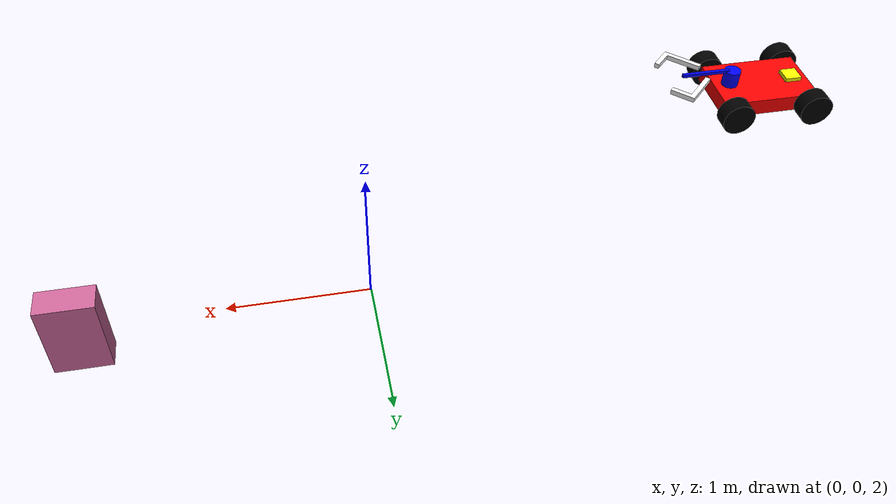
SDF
<sdf version="1.8">
 <world name="demo">
  <physics name="1ms" type="ignored">
   <max_step_size>0.01</max_step_size>
   <real_time_factor>1</real_time_factor>
  </physics>
  <plugin name="ignition::gazebo::systems::Physics" filename="libignition-gazebo-physics-system.so"/>
  <plugin name="ignition::gazebo::systems::UserCommands" filename="libignition-gazebo-user-commands-system.so"/>
  <plugin name="ignition::gazebo::systems::SceneBroadcaster" filename="libignition-gazebo-scene-broadcaster-system.so"/>
  <plugin name="ignition::gazebo::systems::Imu" filename="ignition-gazebo-imu-system"/>
  <plugin name="ignition::gazebo::systems::Sensors" filename="ignition-gazebo-sensors-system">
   <render_engine>ogre2</render_engine>
  </plugin>
  <scene>
   <ambient>1 1 1 1</ambient>
   <background>0.3 0.7 0.9 1</background>
   <shadows>0</shadows>
   <grid>1</grid>
  </scene>
  <model name="ground_plane">
   <static>1</static>
   <link name="link">
    <collision name="collision">
     <geometry><plane><normal>0 0 1</normal><size>1 1</size></plane></geometry>
    </collision>
   </link>
  </model>
  <model name="depot_collision">
   <static>1</static>
   <pose>7.19009 1.09982 0 0 0 0</pose>
   <link name="collision_link">
    <collision name="wall1">
     <pose>0 -7.6129 4.5 0 0 0</pose>
     <geometry><box><size>30.167 0.08 9</size></box></geometry>
    </collision>
    <collision name="wall2">
     <pose>0 7.2875 4.5 0 0 0</pose>
     <geometry><box><size>30.167 0.08 9</size></box></geometry>
    </collision>
    <collision name="wall3">
     <pose>-15 0 4.5 0 0 0</pose>
     <geometry><box><size>0.08 15.360 9</size></box></geometry>
    </collision>
    <collision name="wall4">
     <pose>15 0 4.5 0 0 0</pose>
     <geometry><box><size>0.08 15.360 9</size></box></geometry>
    </collision>
    <collision name="boxes1">
     <pose>0.22268 -4.7268 0.68506 0 0 0</pose>
     <geometry><box><size>1.288 1.422 1.288</size></box></geometry>
    </collision>
    <collision name="boxes2">
     <pose>3.1727 -4.7268 0.68506 0 0 0</pose>
     <geometry><box><size>1.288 1.422 1.288</size></box></geometry>
    </collision>
    <collision name="boxes3">
     <pose>5.95268 -4.7268 0.68506 0 0 0</pose>
     <geometry><box><size>1.288 1.422 1.288</size></box></geometry>
    </collision>
    <collision name="boxes4">
     <pose>8.55887 -4.7268 0.68506 0 0 0</pose>
     <geometry><box><size>1.288 1.422 1.288</size></box></geometry>
    </collision>
    <collision name="boxes5">
     <pose>11.326 -4.7268 0.68506 0 0 0</pose>
     <geometry><box><size>1.288 1.422 1.288</size></box></geometry>
    </collision>
    <collision name="boxes6">
     <pose>0.22268 -2.37448 0.68506 0 0 0</pose>
     <geometry><box><size>1.288 1.422 1.288</size></box></geometry>
    </collision>
    <collision name="boxes7">
     <pose>3.1727 -2.37448 0.68506 0 0 0</pose>
     <geometry><box><size>1.288 1.422 1.288</size></box></geometry>
    </collision>
    <collision name="boxes8">
     <pose>5.95268 -2.37448 0.68506 0 0 0</pose>
     <geometry><box><size>1.288 1.422 1.288</size></box></geometry>
    </collision>
    <collision name="boxes9">
     <pose>8.55887 -2.37448 0.68506 0 0 0</pose>
     <geometry><box><size>1.288 1.422 1.288</size></box></geometry>
    </collision>
    <collision name="boxes10">
     <pose>11.326 -2.37448 0.68506 0 0 0</pose>
     <geometry><box><size>1.288 1.422 1.288</size></box></geometry>
    </collision>
    <collision name="boxes11">
     <pose>-1.2268 4.1557 0.68506 0 0 -1.02799893</pose>
     <geometry><box><size>1.288 1.422 1.288</size></box></geometry>
    </collision>
    <collision name="pilar1">
     <pose>-7.5402 3.6151 1 0 0 0</pose>
     <geometry><box><size>0.465 0.465 2</size></box></geometry>
    </collision>
    <collision name="pilar2">
     <pose>7.4575 3.6151 1 0 0 0</pose>
     <geometry><box><size>0.465 0.465 2</size></box></geometry>
    </collision>
    <collision name="pilar3">
     <pose>-7.5402 -3.8857 1 0 0 0</pose>
     <geometry><box><size>0.465 0.465 2</size></box></geometry>
    </collision>
    <collision name="pilar4">
     <pose>7.4575 -3.8857 1 0 0 0</pose>
     <geometry><box><size>0.465 0.465 2</size></box></geometry>
    </collision>
    <collision name="pallet_mover1">
     <pose>-0.6144 -2.389 0.41838 0 0 0</pose>
     <geometry><box><size>0.363 0.440 0.719</size></box></geometry>
    </collision>
    <collision name="pallet_mover2">
     <pose>-1.6004 4.8225 0.41838 0 0 0</pose>
     <geometry><box><size>0.363 0.244 0.719</size></box></geometry>
    </collision>
    <collision name="stairs">
     <pose>13.018 3.1652 0.25 0 0 0</pose>
     <geometry><box><size>1.299 0.6 0.5</size></box></geometry>
    </collision>
    <collision name="shelfs1">
     <pose>1.4662 -0.017559 0.5 0 0 0</pose>
     <geometry><cylinder><radius>0.03</radius><length>1</length></cylinder></geometry>
    </collision>
    <collision name="shelfs2">
     <pose>2.6483 -0.017559 0.5 0 0 0</pose>
     <geometry><cylinder><radius>0.03</radius><length>1</length></cylinder></geometry>
    </collision>
    <collision name="shelfs3">
     <pose>5.3247 -0.017559 0.5 0 0 0</pose>
     <geometry><cylinder><radius>0.03</radius><length>1</length></cylinder></geometry>
    </collision>
    <collision name="shelfs4">
     <pose>6.5063 -0.017559 0.5 0 0 0</pose>
     <geometry><cylinder><radius>0.03</radius><length>1</length></cylinder></geometry>
    </collision>
    <collision name="shelfs5">
     <pose>9.0758 -0.017559 0.5 0 0 0</pose>
     <geometry><cylinder><radius>0.03</radius><length>1</length></cylinder></geometry>
    </collision>
    <collision name="shelfs6">
     <pose>10.258 -0.017559 0.5 0 0 0</pose>
     <geometry><cylinder><radius>0.03</radius><length>1</length></cylinder></geometry>
    </collision>
    <collision name="shelfs7">
     <pose>1.4662 2.5664 0.5 0 0 0</pose>
     <geometry><cylinder><radius>0.03</radius><length>1</length></cylinder></geometry>
    </collision>
    <collision name="shelfs8">
     <pose>2.6483 2.5664 0.5 0 0 0</pose>
     <geometry><cylinder><radius>0.03</radius><length>1</length></cylinder></geometry>
    </collision>
    <collision name="shelfs9">
     <pose>5.3247 2.5664 0.5 0 0 0</pose>
     <geometry><cylinder><radius>0.03</radius><length>1</length></cylinder></geometry>
    </collision>
    <collision name="shelfs10">
     <pose>6.5063 2.5664 0.5 0 0 0</pose>
     <geometry><cylinder><radius>0.03</radius><length>1</length></cylinder></geometry>
    </collision>
    <collision name="shelfs11">
     <pose>9.0758 2.5664 0.5 0 0 0</pose>
     <geometry><cylinder><radius>0.03</radius><length>1</length></cylinder></geometry>
    </collision>
    <collision name="shelfs12">
     <pose>10.258 2.5664 0.5 0 0 0</pose>
     <geometry><cylinder><radius>0.03</radius><length>1</length></cylinder></geometry>
    </collision>
    <collision name="shelfs13">
     <pose>1.4662 5.1497 0.5 0 0 0</pose>
     <geometry><cylinder><radius>0.03</radius><length>1</length></cylinder></geometry>
    </collision>
    <collision name="shelfs14">
     <pose>2.6483 5.1497 0.5 0 0 0</pose>
     <geometry><cylinder><radius>0.03</radius><length>1</length></cylinder></geometry>
    </collision>
    <collision name="shelfs15">
     <pose>5.3247 5.1497 0.5 0 0 0</pose>
     <geometry><cylinder><radius>0.03</radius><length>1</length></cylinder></geometry>
    </collision>
    <collision name="shelfs16">
     <pose>6.5063 5.1497 0.5 0 0 0</pose>
     <geometry><cylinder><radius>0.03</radius><length>1</length></cylinder></geometry>
    </collision>
    <collision name="shelfs17">
     <pose>9.0758 5.1497 0.5 0 0 0</pose>
     <geometry><cylinder><radius>0.03</radius><length>1</length></cylinder></geometry>
    </collision>
    <collision name="shelfs18">
     <pose>10.258 5.1497 0.5 0 0 0</pose>
     <geometry><cylinder><radius>0.03</radius><length>1</length></cylinder></geometry>
    </collision>
   </link>
  </model>
  <model name="vehicle">
   <self_collide>true</self_collide>
   <pose>-3 0 3 0 0 0</pose>
   <include merge="true"><uri>package://gestura_simulation/models/vehicle/model.sdf</uri></include>
   <plugin filename="ignition-gazebo-joint-state-publisher-system" name="ignition::gazebo::systems::JointStatePublisher"/>
   <plugin filename="ignition-gazebo-pose-publisher-system" name="ignition::gazebo::systems::PosePublisher">
    <publish_link_pose>true</publish_link_pose>
    <use_pose_vector_msg>true</use_pose_vector_msg>
    <static_publisher>true</static_publisher>
    <static_update_frequency>1</static_update_frequency>
   </plugin>
   <plugin filename="ignition-gazebo-odometry-publisher-system" name="ignition::gazebo::systems::OdometryPublisher">
    <odom_frame>vehicle/odom</odom_frame>
    <robot_base_frame>vehicle</robot_base_frame>
   </plugin>
  </model>
  <model name="obstacle">
   <pose>2 0 2 0 0 0</pose>
   <link name="box">
    <inertial>
     <mass>3.5</mass>
     <inertia><ixx>100</ixx><ixy>0</ixy><ixz>0</ixz><iyy>100</iyy><iyz>0</iyz><izz>104</izz></inertia>
    </inertial>
    <visual name="visual">
     <geometry><box><size>0.4 0.2 0.6</size></box></geometry>
     <material>
      <ambient>0.8 0.4 0.6 1</ambient>
      <diffuse>0.8 0.4 0.6 1</diffuse>
      <specular>0.8 0.4 0.6 1</specular>
     </material>
    </visual>
    <collision name="collision"><geometry><box><size>0.4 0.2 0.6</size></box></geometry></collision>
   </link>
  </model>
 </world>
</sdf>

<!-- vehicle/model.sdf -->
<sdf version="1.8">

        <model name='vehicle_blue'>
            <link name='chassis'>
                <pose >0.5 0 0.4 0 0 0</pose>
                <inertial> <!--inertial properties of the link mass, inertia matix-->
                    <mass>1.14395</mass>
                    <inertia>
                        <ixx>0.126164</ixx>
                        <ixy>0</ixy>
                        <ixz>0</ixz>
                        <iyy>0.416519</iyy>
                        <iyz>0</iyz>
                        <izz>0.481014</izz>
                    </inertia>
                </inertial>
                <visual name='visual'>
                    <geometry>
                        <box>
                            <size>0.6 0.4 0.1</size> <!--question: this size is in meter-->
                        </box>
                    </geometry>
                    <!--let's add color to our link-->
                    <material>
                        <ambient>1.0 0.0 0.0 1</ambient>
                        <diffuse>1.0 0.0 0.0 1</diffuse>
                        <specular>1.0 0.0 0.0 1</specular>
                    </material>
                </visual>
                <collision name='collision'> <!--todo: describe why we need the collision-->
                    <geometry>
                        <box>
                            <size>0.6 0.4 0.1</size>
                        </box>
                    </geometry>
                </collision>
            </link>

            <!--let's build the left wheel-->
            <link name='left_wheel_back'>
                <pose relative_to="chassis">-0.25 0.25 0.0 1.5707 0 0</pose> <!--angles are in radian-->
                <inertial>
                    <mass>2</mass>
                    <inertia>
                        <ixx>0.145833</ixx>
                        <ixy>0</ixy>
                        <ixz>0</ixz>
                        <iyy>0.145833</iyy>
                        <iyz>0</iyz>
                        <izz>0.125</izz>
                    </inertia>
                </inertial>
                <visual name='visual'>
                    <geometry>
                        <cylinder>
                            <radius>0.1</radius>
                            <length>0.1</length>
                        </cylinder>
                    </geometry>
                    <material>
                        <ambient>0 0 0 1</ambient>
                        <diffuse>0 0 0 1</diffuse>
                        <specular>0 0 0 1</specular>
                    </material>
                </visual>
                <collision name='collision'>
                    <geometry>
                        <cylinder>
                            <radius>0.1</radius>
                            <length>0.1</length>
                        </cylinder>
                    </geometry>
                </collision>
            </link>

            <link name='left_wheel_front'>
                <pose relative_to="chassis">0.25 0.25 0 1.5707 0 0</pose> <!--angles are in radian-->
                <inertial>
                    <mass>2</mass>
                    <inertia>
                        <ixx>0.145833</ixx>
                        <ixy>0</ixy>
                        <ixz>0</ixz>
                        <iyy>0.145833</iyy>
                        <iyz>0</iyz>
                        <izz>0.125</izz>
                    </inertia>
                </inertial>
                <visual name='visual'>
                    <geometry>
                        <cylinder>
                            <radius>0.1</radius>
                            <length>0.1</length>
                        </cylinder>
                    </geometry>
                    <material>
                        <ambient>0 0 0 1</ambient>
                        <diffuse>0 0 0 1</diffuse>
                        <specular>0 0 0 1</specular>
                    </material>
                </visual>
                <collision name='collision'>
                    <geometry>
                        <cylinder>
                            <radius>0.1</radius>
                            <length>0.1</length>
                        </cylinder>
                    </geometry>
                </collision>
            </link>

            <link name='right_wheel_back'>
                <pose relative_to="chassis">-0.25 -0.25 0 1.5707 0 0</pose> <!--angles are in radian-->
                <inertial>
                    <mass>2</mass>
                    <inertia>
                        <ixx>0.145833</ixx>
                        <ixy>0</ixy>
                        <ixz>0</ixz>
                        <iyy>0.145833</iyy>
                        <iyz>0</iyz>
                        <izz>0.125</izz>
                    </inertia>
                </inertial>
                <visual name='visual'>
                    <geometry>
                        <cylinder>
                            <radius>0.1</radius>
                            <length>0.1</length>
                        </cylinder>
                    </geometry>
                    <material>
                        <ambient>0 0 0 1</ambient>
                        <diffuse>0 0 0 1</diffuse>
                        <specular>0 0 0 1</specular>
                    </material>
                </visual>
                <collision name='collision'>
                    <geometry>
                        <cylinder>
                            <radius>0.1</radius>
                            <length>0.1</length>
                        </cylinder>
                    </geometry>
                </collision>
            </link>

            <link name='right_wheel_front'>
                <pose relative_to="chassis">0.25 -0.25 0 1.5707 0 0</pose> <!--angles are in radian-->
                <inertial>
                    <mass>2</mass>
                    <inertia>
                        <ixx>0.145833</ixx>
                        <ixy>0</ixy>
                        <ixz>0</ixz>
                        <iyy>0.145833</iyy>
                        <iyz>0</iyz>
                        <izz>0.125</izz>
                    </inertia>
                </inertial>
                <visual name='visual'>
                    <geometry>
                        <cylinder>
                            <radius>0.1</radius>
                            <length>0.1</length>
                        </cylinder>
                    </geometry>
                    <material>
                        <ambient>0 0 0 1</ambient>
                        <diffuse>0 0 0 1</diffuse>
                        <specular>0 0 0 1</specular>
                    </material>
                </visual>
                <collision name='collision'>
                    <geometry>
                        <cylinder>
                            <radius>0.1</radius>
                            <length>0.1</length>
                        </cylinder>
                    </geometry>
                </collision>
            </link>

            <!--connecting these links together using joints-->
            <joint name='left_wheel_back_joint' type='revolute'> <!--continous joint is not supported yet-->
                <pose relative_to='left_wheel_back'/>
                <parent>chassis</parent>
                <child>left_wheel_back</child>
                <axis>
                    <xyz>0 0 -1</xyz> <!--can be defined as any frame or even arbitrary frames-->
                    <limit>
                        <lower>-1.79769e+308</lower>    <!--negative infinity-->
                        <upper>1.79769e+308</upper>     <!--positive infinity-->
                    </limit>
                </axis>
            </joint>

            <joint name='right_wheel_back_joint' type='revolute'>
                <pose relative_to='right_wheel_back'/>
                <parent>chassis</parent>
                <child>right_wheel_back</child>
                <axis>
                    <xyz>0 0 -1</xyz>
                    <limit>
                        <lower>-1.79769e+308</lower>    <!--negative infinity-->
                        <upper>1.79769e+308</upper>     <!--positive infinity-->
                    </limit>
                </axis>
            </joint>

            <joint name='left_wheel_front_joint' type='revolute'> <!--continous joint is not supported yet-->
                <pose relative_to='left_wheel_front'/>
                <parent>chassis</parent>
                <child>left_wheel_front</child>
                <axis>
                    <xyz>0 0 -1</xyz> <!--can be defined as any frame or even arbitrary frames-->
                    <limit>
                        <lower>-1.79769e+308</lower>    <!--negative infinity-->
                        <upper>1.79769e+308</upper>     <!--positive infinity-->
                    </limit>
                </axis>
            </joint>

            <joint name='right_wheel_front_joint' type='revolute'>
                <pose relative_to='right_wheel_front'/>
                <parent>chassis</parent>
                <child>right_wheel_front</child>
                <axis>
                    <xyz>0 0 -1</xyz>
                    <limit>
                        <lower>-1.79769e+308</lower>    <!--negative infinity-->
                        <upper>1.79769e+308</upper>     <!--positive infinity-->
                    </limit>
                </axis>
            </joint>

            <link name='camera_module'>
                <pose relative_to='chassis'>-0.2 0 0.05  0 0 0</pose>
                <inertial> <!--inertial properties of the link mass, inertia matix-->
                    <mass>1.14395</mass>
                    <inertia>
                        <ixx>0.126164</ixx>
                        <ixy>0</ixy>
                        <ixz>0</ixz>
                        <iyy>0.416519</iyy>
                        <iyz>0</iyz>
                        <izz>0.481014</izz>
                    </inertia>
                </inertial>
                <visual name='visual'>
                    <geometry>
                        <box>
                            <size>0.1 0.1 0.05</size> <!--question: this size is in meter-->
                        </box>
                    </geometry>
                    <!--let's add color to our link-->
                    <material>
                        <ambient>1.0 1.0 0.0 1</ambient>
                        <diffuse>1.0 1.0 0.0 1</diffuse>
                        <specular>1.0 1.0 0.0 1</specular>
                    </material>
                </visual>
                <collision name='collision'> <!--todo: describe why we need the collision-->
                    <geometry>
                        <box>
                            <size>0.2 0.2 0.1</size>
                        </box>
                    </geometry>
                </collision>
            </link>

            <joint name='camera_module_joint' type='fixed'>
                <pose relative_to='chassis'/>
                <parent>chassis</parent>
                <child>camera_module</child>
            </joint>

            <link name='arm_base'>
                <pose relative_to='chassis'>0.2 0 0.1  0 0 0</pose>
                <inertial> <!--inertial properties of the link mass, inertia matix-->
                    <mass>1.14395</mass>
                    <inertia>
                        <ixx>0.126164</ixx>
                        <ixy>0</ixy>
                        <ixz>0</ixz>
                        <iyy>0.416519</iyy>
                        <iyz>0</iyz>
                        <izz>0.481014</izz>
                    </inertia>
                </inertial>
                <visual name='visual'>
                    <geometry>
                        <cylinder>
                            <radius>0.05</radius>
                            <length>0.1</length>
                        </cylinder>
                    </geometry>
                    <!--let's add color to our link-->
                    <material>
                        <ambient>0.0 0.0 1.0 1</ambient>
                        <diffuse>0.0 0.0 1.0 1</diffuse>
                        <specular>0.0 0.0 1.0 1</specular>
                    </material>
                </visual>
                <collision name='collision'> <!--todo: describe why we need the collision-->
                    <geometry>
                        <cylinder>
                            <radius>0.05</radius>
                            <length>0.1</length>
                        </cylinder>
                    </geometry>
                </collision>
            </link>

            <joint name='arm_base_joint' type='fixed'>
                <pose relative_to='chassis'/>
                <parent>chassis</parent>
                <child>arm_base</child>
            </joint>

            <link name='arm1'>
                <pose relative_to="arm_base">0.175 0 0.05 0 0 0</pose>
                <inertial>
                    <mass>1</mass>
                    <inertia>
                        <ixx>0.145833</ixx>
                        <ixy>0</ixy>
                        <ixz>0</ixz>
                        <iyy>0.145833</iyy>
                        <iyz>0</iyz>
                        <izz>0.125</izz>
                    </inertia>
                </inertial>
                <visual name='visual'>
                    <geometry>
                        <box>
                            <size>0.3 0.02 0.02</size>
                        </box>
                    </geometry>
                    <material>
                        <ambient>0 0 1 1</ambient>
                        <diffuse>0 0 1 1</diffuse>
                        <specular>0 0 1 1</specular>
                    </material>
                </visual>
                <collision name='collision'>
                    <geometry>
                        <box>
                            <size>0.3 0.02 0.02</size>
                        </box>
                    </geometry>
                </collision>
            </link>

            <joint name='arm1_joint' type='fixed'>
                <pose relative_to="arm_base">0.025 0 0.05 0 0 0</pose>
                <parent>arm_base</parent>
                <child>arm1</child>
            </joint>

            <link name='left_gripper'>
                <pose relative_to="arm1">0.1 0.15 0 0 0 0.785</pose> <!--angles are in radian-->
                <inertial>
                    <mass>2</mass>
                    <inertia>
                        <ixx>0.145833</ixx>
                        <ixy>0</ixy>
                        <ixz>0</ixz>
                        <iyy>0.145833</iyy>
                        <iyz>0</iyz>
                        <izz>0.125</izz>
                    </inertia>
                </inertial>
                <visual name='visual'>
                        <geometry>
                            <mesh>
                                <uri>package://ros_gz_sim_demos/models/STL_Files/Left_gripper.stl</uri>
                                <scale> 0.03 0.03 0.03 </scale>
                            </mesh>

                        </geometry>
                    <material>
                        <ambient>1 1 1 1</ambient>
                        <diffuse>1 1 1 1</diffuse>
                        <specular>1 1 1 1</specular>
                    </material>
                </visual>
                <collision name='collision'>
                    <geometry>
                        <mesh>
                            <uri>package://ros_gz_sim_demos/models/STL_Files/Left_gripper.stl</uri>
                            <scale> 0.03 0.03 0.03 </scale>
                        </mesh>
                    </geometry>
                </collision>
            </link>

            <joint name='left_gripper_joint' type='revolute'>
                <parent>arm1</parent>
                <child>left_gripper</child>
                <axis>
                    <xyz>0 0 1</xyz>
                    <limit>
                        <lower>-0.785</lower>
                        <upper>0.785</upper>
                    </limit>
                </axis>
            </joint>

            <link name='right_gripper'>
                <pose relative_to="arm1">0.1 -0.15 0 0 0 -0.785</pose> <!--angles are in radian-->
                <inertial>
                    <mass>2</mass>
                    <inertia>
                        <ixx>0.145833</ixx>
                        <ixy>0</ixy>
                        <ixz>0</ixz>
                        <iyy>0.145833</iyy>
                        <iyz>0</iyz>
                        <izz>0.125</izz>
                    </inertia>
                </inertial>
                <visual name='visual'>
                        <geometry>
                            <mesh>
                                <uri>package://ros_gz_sim_demos/models/STL_Files/Right_gripper.stl</uri>
                                <scale> 0.03 0.03 0.03 </scale>
                            </mesh>
                        </geometry>
                    <material>
                        <ambient>1 1 1 1</ambient>
                        <diffuse>1 1 1 1</diffuse>
                        <specular>1 1 1 1</specular>
                    </material>
                </visual>
                <collision name='collision'>
                    <geometry>
                        <mesh>
                            <uri>package://ros_gz_sim_demos/models/STL_Files/Right_gripper.stl</uri>
                            <scale> 0.03 0.03 0.03 </scale>
                        </mesh>
                    </geometry>
                </collision>
            </link>

            <joint name='right_gripper_joint' type='revolute'>
                <parent>arm1</parent>
                <child>right_gripper</child>
                <axis>
                    <xyz>0 0 -1</xyz>
                    <limit>
                        <lower>-0.785</lower>
                        <upper>0.785</upper>
                    </limit>
                </axis>
            </joint>

            <plugin
                filename="ignition-gazebo-diff-drive-system"
                name="ignition::gazebo::systems::DiffDrive">
                <left_joint>left_wheel_front_joint</left_joint>
                <right_joint>right_wheel_front_joint</right_joint>
                <wheel_separation>0.5</wheel_separation>
                <wheel_radius>0.1</wheel_radius>
                <topic>model/vehicle/cmd_vel2</topic>
                <odom_publish_frequency>1</odom_publish_frequency>
                <max_linear_acceleration>1</max_linear_acceleration>
                <min_linear_acceleration>-1</min_linear_acceleration>
                <max_angular_acceleration>2</max_angular_acceleration>
                <min_angular_acceleration>-2</min_angular_acceleration>
                <max_linear_velocity>100.0</max_linear_velocity>
                <min_linear_velocity>-100.0</min_linear_velocity>
                <max_angular_velocity>10.0</max_angular_velocity>
                <min_angular_velocity>-10.0</min_angular_velocity>
            </plugin>

            <plugin
                filename="ignition-gazebo-diff-drive-system"
                name="ignition::gazebo::systems::DiffDrive">
                <left_joint>left_wheel_back_joint</left_joint>
                <right_joint>right_wheel_back_joint</right_joint>
                <wheel_separation>0.5</wheel_separation>
                <wheel_radius>0.1</wheel_radius>
                <topic>model/vehicle/cmd_vel2</topic>
                <odom_publish_frequency>1</odom_publish_frequency>
                <max_linear_acceleration>1</max_linear_acceleration>
                <min_linear_acceleration>-1</min_linear_acceleration>
                <max_angular_acceleration>2</max_angular_acceleration>
                <min_angular_acceleration>-2</min_angular_acceleration>
                <max_linear_velocity>100.0</max_linear_velocity>
                <min_linear_velocity>-100.0</min_linear_velocity>
                <max_angular_velocity>10.0</max_angular_velocity>
                <min_angular_velocity>-10.0</min_angular_velocity>
            </plugin>

            <plugin
                filename="ignition-gazebo-diff-drive-system"
                name="ignition::gazebo::systems::DiffDrive">
                <left_joint>left_gripper_joint</left_joint>
                <right_joint>right_gripper_joint</right_joint>
                <wheel_separation>0.5</wheel_separation>
                <wheel_radius>0.1</wheel_radius>
                <topic>model/vehicle/cmd_vel</topic>
                <odom_publish_frequency>1</odom_publish_frequency>
                <max_linear_acceleration>1</max_linear_acceleration>
                <min_linear_acceleration>-1</min_linear_acceleration>
                <max_angular_acceleration>2</max_angular_acceleration>
                <min_angular_acceleration>-2</min_angular_acceleration>
                <max_linear_velocity>100.0</max_linear_velocity>
                <min_linear_velocity>-100.0</min_linear_velocity>
                <max_angular_velocity>10.0</max_angular_velocity>
                <min_angular_velocity>-10.0</min_angular_velocity>
            </plugin>

        </model>

</sdf>
